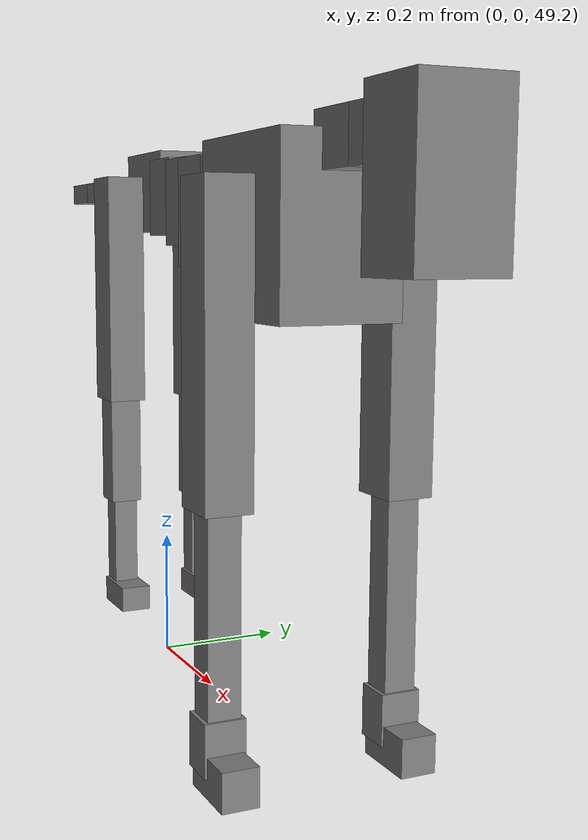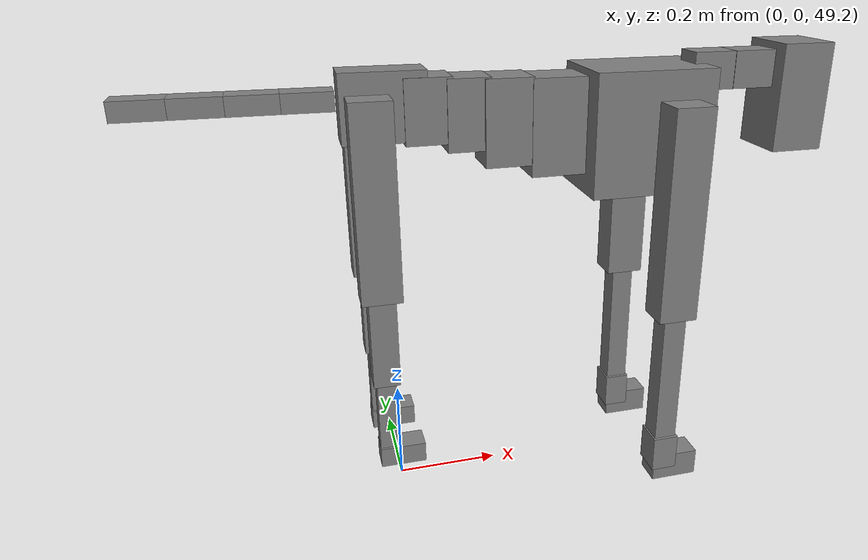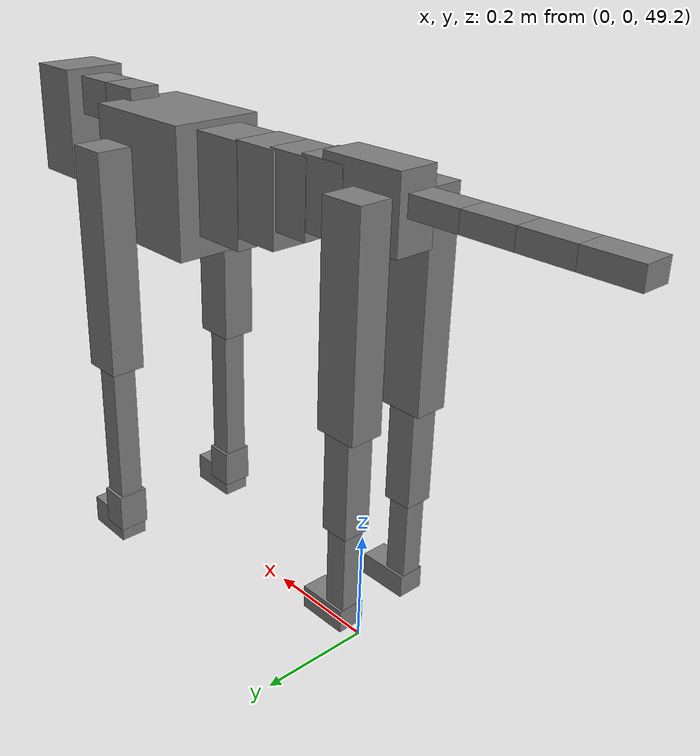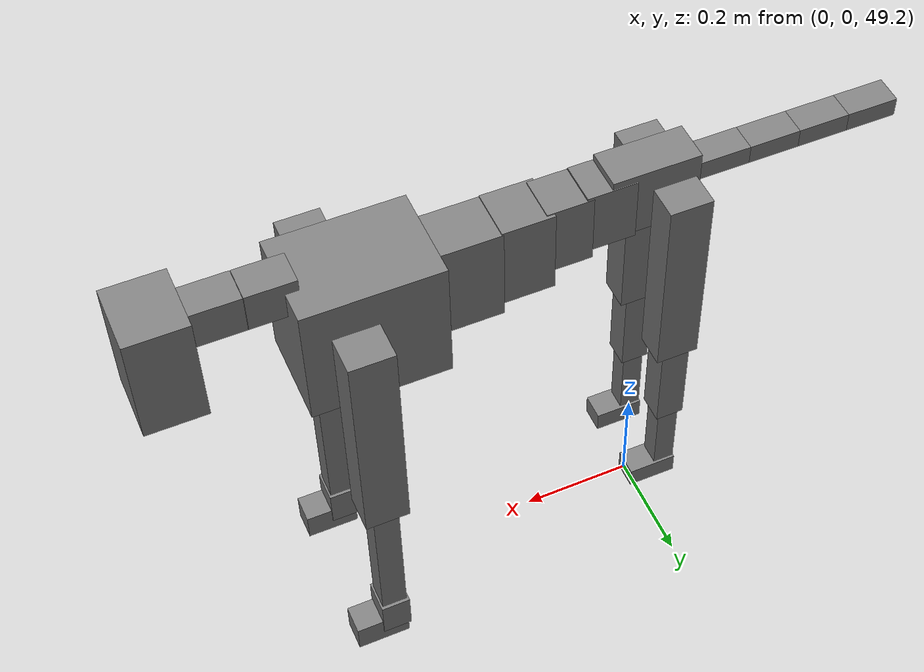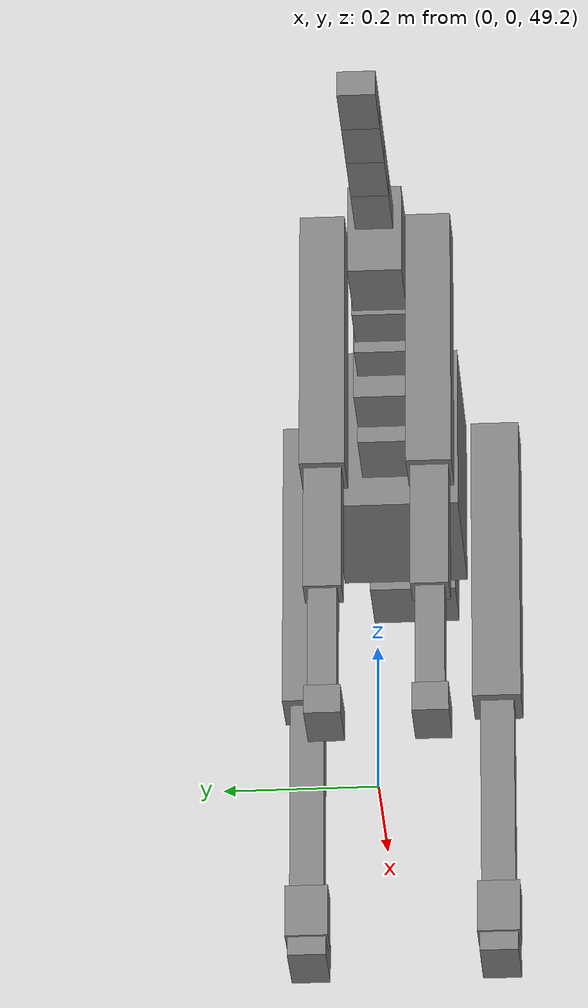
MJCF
<mujoco model="dog">

    <default>
        <joint armature="0.02" stiffness="1" damping="0.2" limited="true"/>
        <geom condim="3" friction="1 0.05 0.05" margin="0.01"/>
        <motor ctrllimited="true" ctrlrange="-1.0 1.0" forcelimited="true" gear="50"/>
    </default>

    <compiler inertiafromgeom="true" angle="radian"/>

    <option timestep="0.016" iterations="50" tolerance="1e-10" solver="Newton" jacobian="dense" cone="pyramidal"/>

    <size nconmax="20000" njmax="60000" nstack="5000000"/>
    <visual>
        <map force="0.1" zfar="30"/>
        <rgba haze="0.15 0.25 0.35 1"/>
        <quality shadowsize="2048"/>
        <global offwidth="800" offheight="800"/>
    </visual>

    <asset>
        <texture type="skybox" builtin="gradient" rgb1="0.3 0.5 0.7" rgb2="0 0 0" width="512" height="512"/>
        <texture name="texplane" type="2d" builtin="checker" rgb1=".2 .3 .4" rgb2=".1 0.15 0.2" width="512" height="512"
                 mark="cross" markrgb=".8 .8 .8"/>
        <texture name="texgeom" type="cube" builtin="flat" mark="cross" width="127" height="1278" rgb1="0.8 0.6 0.4"
                 rgb2="0.8 0.6 0.4" markrgb="1 1 1" random="0.01"/>

        <material name="matplane" reflectance="0.3" texture="texplane" texrepeat="1 1" texuniform="true"/>
        <material name="matgeom" texture="texgeom" texuniform="true" rgba="0.8 0.6 .4 1"/>
    </asset>

    <worldbody>
        <geom name="floor" pos="0 0 0" size="0 0 .25" type="plane" material="matplane" condim="3"/>

        <light directional="false" diffuse=".2 .2 .2" specular="0 0 0" pos="0 0 5" dir="0 0 -1" castshadow="false"/>
        <light mode="targetbodycom" target="torso" directional="false" diffuse=".8 .8 .8" specular="0.3 0.3 0.3"
               pos="0 0 4.0" dir="0 0 -1"/>

        <body name="root" pos="0 0 50">
            <freejoint name="root_1"/>
            <geom type="box" pos="0 0 -0.02" size="0.0774  0.0358  0.063" density="2030"/>

            <body name="spine1" pos="0.054 0 0">
                <joint name="spine1_y" axis="0 1 0" range="0 0.7" limited="true"/>
                <geom type="box" pos="0.02375 0 -0.03" size="0.04375  0.0375  0.05985" density="2030"/>

                <body name="spine2" pos="0.0612 0 0">
                    <joint name="spine2_y" axis="0 1 0" range="-0.15 0.15" limited="true"/>
                    <geom type="box" pos="0.03555  0  -0.04" size="0.04055  0.039  0.06615" density="2030"/>

                    <body name="spine3" pos="0.0730 0 0">
                        <joint name="spine3_y" axis="0 1 0" range="-0.15 0.15" limited="true"/>
                        <geom type="box" pos="0.03555  0  -0.057" size="0.04555  0.0445  0.081" density="2030"/>

                        <body name="spine4" pos="0.0780 0 0">
                            <joint name="spine4_y" axis="0 1 0" range="-0.15 0.15" limited="true"/>
                            <geom type="box" pos="0.05265  0  -0.07" size="0.05265  0.045  0.09135" density="2030"/>

                            <body name="torso" pos="0.1082 0 0">
                                <joint name="torso_y" axis="0 1 0" range="-0.15 0.15" limited="true"/>
                                <geom type="box" pos="0.11925  0  -0.085" size="0.11925  0.085  0.11745"
                                      density="2030"/>

                                <body name="neck1" pos="0.2160  0   0.0180">
                                    <joint name="neck1_y" axis="0 1 0" range="-1.2  -1" limited="true"/>
                                    <geom type="box" pos="0.0423  0  0" size="0.0423  0.03  0.036" density="2325"/>

                                    <body name="neck2" pos="0.0853  0  0">
                                        <joint name="neck2_y" axis="0 1 0" range="0.1  0" limited="true"/>
                                        <geom type="box" pos="0.0423  0  0" size="0.0423  0.03  0.036" density="2325"/>

                                        <body name="head" pos="0.0853  0  0">
                                            <joint name="head_y" axis="0 1 0" range="-0.3  -0.2" limited="true"/>
                                            <geom type="box" pos="0.0531  0  -0.055" size="0.0531  0.06  0.1044"
                                                  density="4030"/>

                                        </body>
                                    </body>
                                </body>

                                <body name="front_shoulder" pos="0.156  0   -0.0480">
                                    <joint name="front_shoulder_y" axis="0 1 0" range="-1 1.5" limited="true"/>
                                    <geom type="box" pos="0 0.13 -0.1819" size="0.0388  0.0331  0.2086" density="1158"/>
                                    <geom type="box" pos="0 -0.13 -0.1819" size="0.0388  0.0331  0.2086"
                                          density="1158"/>

                                    <body name="front_elbow" pos="0  0  -0.3639">
                                        <joint name="front_elbow_y" axis="0 1 0" range="-2 0" limited="true"/>
                                        <geom type="box" pos="0 0.13 -0.1552" size="0.0226  0.0231  0.1552"
                                              density="1081"/>
                                        <geom type="box" pos="0 -0.13 -0.1552" size="0.0226  0.0231  0.1552"
                                              density="1081"/>

                                        <body name="front_wrist" pos="0  0  -0.3104">
                                            <joint name="front_wrist_y" axis="0 1 0" range="-0.2 0" limited="true"/>
                                            <geom type="box" pos="0 0.13 -0.0238" size="0.0261  0.0291  0.0369"
                                                  density="1664"/>
                                            <geom type="box" pos="0 -0.13 -0.0238" size="0.0261  0.0291  0.0369"
                                                  density="1664"/>

                                            <body name="front_finger_end" pos="0  0  -0.0475">
                                                <joint name="front_finger_y" axis="0 1 0" range="-0.4 1"
                                                       limited="true"/>
                                                <geom type="box" pos="0.0261  0.13  -0.0124"
                                                      size="0.0479  0.0261  0.0274" density="1515"/>
                                                <geom type="box" pos="0.0261  -0.13  -0.0124"
                                                      size="0.0479  0.0261  0.0274" density="1515"/>

                                            </body>

                                        </body>
                                    </body>
                                </body>

                            </body>
                        </body>
                    </body>
                </body>
            </body>

            <body name="back_hip" pos="-0.03 0 -0.018">
                <joint name="back_hip_y" axis="0 1 0" range="-1.5 0.3" limited="true"/>
                <geom type="box" pos="0 0.07 -0.1606" size="0.0379  0.0297  0.1834" density="1154"/>
                <geom type="box" pos="0 -0.07 -0.1606" size="0.0379  0.0297  0.1834" density="1154"/>

                <body name="back_knee" pos="0  0  -0.3212">
                    <joint name="back_knee_y" axis="0 1 0" range="0 2.8" limited="true"/>
                    <geom type="box" pos="0 0.07 -0.0900" size="0.0254  0.0251  0.1055" density="1227"/>
                    <geom type="box" pos="0 -0.07 -0.0900" size="0.0254  0.0251  0.1055" density="1227"/>

                    <body name="back_ankle" pos="0  0  -0.1800">
                        <joint name="back_ankle_y" axis="0 1 0" range="-2.2 0" limited="true"/>
                        <geom type="box" pos="0 0.07 -0.0851" size="0.0192  0.0192  0.0964" density="1284"/>
                        <geom type="box" pos="0 -0.07 -0.0851" size="0.0192  0.0192  0.0964" density="1284"/>

                        <body name="back_toe_end" pos="0  0  -0.1703">
                            <joint name="back_toe_y" axis="0 1 0" range="-0.4 1" limited="true"/>
                            <geom type="box" pos="0.0240  0.07  -0.0049" size="0.0439  0.0240  0.0199" density="1515"/>
                            <geom type="box" pos="0.0240  -0.07  -0.0049" size="0.0439  0.0240  0.0199" density="1515"/>

                        </body>
                    </body>
                </body>
            </body>

            <body name="tail1" pos="-0.074 0 -0.006">
                <joint name="tail1_y" axis="0 1 0" range="-0.2 0.2" limited="true"/>
                <geom type="box" pos="-0.0536  0  0" size="0.045  0.025  0.0175" density="1587"/>

                <body name="tail2" pos="-0.09 0 0">
                    <joint name="tail2_y" axis="0 1 0" range="-0.2 0.2" limited="true"/>
                    <geom type="box" pos="-0.0536  0  0" size="0.045  0.025  0.0175" density="1587"/>

                    <body name="tail3" pos="-0.09 0 0">
                        <joint name="tail3_y" axis="0 1 0" range="-0.2 0.2" limited="true"/>
                        <geom type="box" pos="-0.0536  0  0" size="0.045  0.025  0.0175" density="1587"/>

                        <body name="tail4" pos="-0.09 0 0">
                            <joint name="tail4_y" axis="0 1 0" range="-0.2 0.2" limited="true"/>
                            <geom type="box" pos="-0.0536  0  0" size="0.045  0.025  0.0175" density="1587"/>

                        </body>
                    </body>
                </body>
            </body>
        </body>
    </worldbody>

    <actuator>
        <motor joint="spine1_y" forcerange="-150 150     "/>
        <motor joint="spine2_y" forcerange="-150 150     "/>
        <motor joint="spine3_y" forcerange="-150 150     "/>
        <motor joint="spine4_y" forcerange="-150 150     "/>
        <motor joint="torso_y" forcerange="-150 150     "/>
        <motor joint="neck1_y" forcerange="-100 100       "/>
        <motor joint="neck2_y" forcerange="-100 100       "/>
        <motor joint="head_y" forcerange="-150 150       "/>
        <motor joint="front_shoulder_y" forcerange="-140.12 180.69"/>
        <motor joint="front_elbow_y" forcerange="-158.38 109.32"/>
        <motor joint="front_wrist_y" forcerange="-86.83 145.58"/>
        <motor joint="front_finger_y" forcerange="-67.09 32.19"/>
        <motor joint="back_hip_y" forcerange="-256.74 339.85"/>
        <motor joint="back_knee_y" forcerange="-209.40 355.16"/>
        <motor joint="back_angle_y" forcerange="-129.55 78.43"/>
        <motor joint="back_toe_y" forcerange="-29.03 82.63"/>
        <motor joint="tail1_y" forcerange="-50 50     "/>
        <motor joint="tail2_y" forcerange="-50 50     "/>
        <motor joint="tail3_y" forcerange="-50 50     "/>
        <motor joint="tail4_y" forcerange="-50 50     "/>
    </actuator>
</mujoco>
